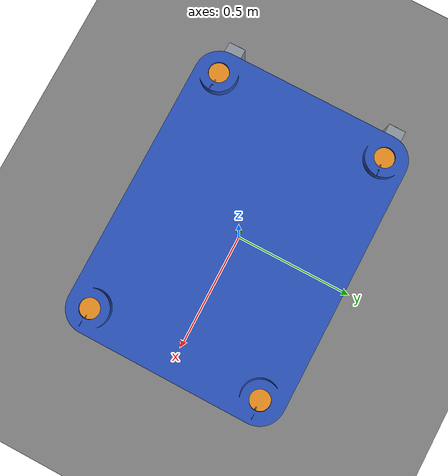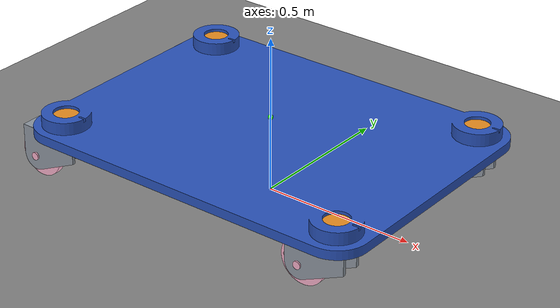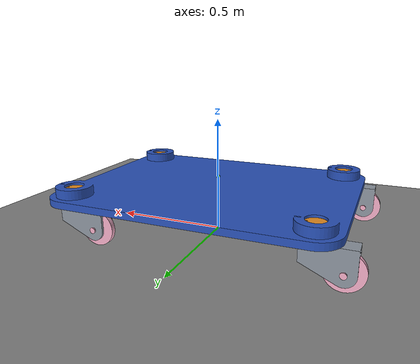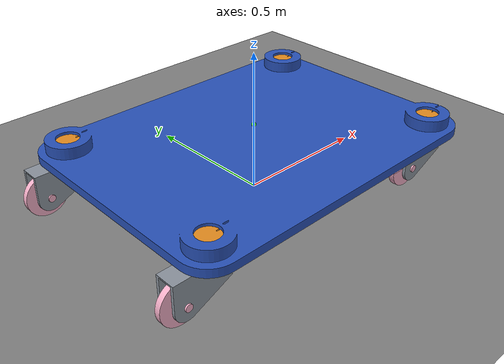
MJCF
<?xml version="1.0" encoding="UTF-8"?>
<mujoco model="offset_steering_wheel">

  <compiler angle="radian"
            autolimits="true"
            inertiafromgeom="true"
            meshdir="../STL"/>

  <option timestep="0.002"
          gravity="0 0 -9.81"
          integrator="implicitfast"
          cone="elliptic"/>

  <statistic center="0 0 0.15" extent="1.5"/>

  <visual>
    <headlight ambient="0.35 0.35 0.35" diffuse="0.7 0.7 0.7" specular="0.2 0.2 0.2"/>
    <rgba haze="0.15 0.25 0.35 1"/>
    <global azimuth="135" elevation="-25"/>
  </visual>

  <default>
    <joint damping="0.05" armature="0.002"/>

    <default class="visual_mesh">
      <geom type="mesh" contype="0" conaffinity="0" group="2" density="0"/>
    </default>

    <default class="collision">
      <geom group="3"
            rgba="0 0 0 0"
            condim="3"
            friction="0.8 0.02 0.001"
            solref="0.01 1"
            solimp="0.9 0.95 0.001"/>
    </default>

    <default class="wheel_collision">
      <geom group="3"
            rgba="0 0 0 0"
            condim="4"
            friction="1.0 0.02 0.001"
            solref="0.005 1"
            solimp="0.95 0.99 0.001"/>
    </default>
  </default>

  <asset>
    <mesh name="base_mesh" file="base/offestWheel - 底盘-1.STL"/>

    <mesh name="caster_bracket_1_mesh" file="caster_1/offestWheel - 脚轮架-1.STL"/>
    <mesh name="steering_turntable_1_mesh" file="caster_1/offestWheel - 转向轮-1.STL"/>
    <mesh name="drive_wheel_1_mesh" file="wheel_1/offestWheel - 脚轮-1.STL"/>

    <mesh name="caster_bracket_2_mesh" file="caster_2/offestWheel - 脚轮架-2.STL"/>
    <mesh name="steering_turntable_2_mesh" file="caster_2/offestWheel - 转向轮-2.STL"/>
    <mesh name="drive_wheel_2_mesh" file="wheel_2/offestWheel - 脚轮-2.STL"/>

    <mesh name="caster_bracket_3_mesh" file="caster_3/offestWheel - 脚轮架-3.STL"/>
    <mesh name="steering_turntable_3_mesh" file="caster_3/offestWheel - 转向轮-3.STL"/>
    <mesh name="drive_wheel_3_mesh" file="wheel_3/offestWheel - 脚轮-3.STL"/>

    <mesh name="caster_bracket_4_mesh" file="caster_4/offestWheel - 脚轮架-4.STL"/>
    <mesh name="steering_turntable_4_mesh" file="caster_4/offestWheel - 转向轮-4.STL"/>
    <mesh name="drive_wheel_4_mesh" file="wheel_4/offestWheel - 脚轮-4.STL"/>

    <!-- With texuniform=true and texrepeat=1, every checker cell is 1 m x 1 m. -->
    <texture name="floor_checker_texture"
             type="2d"
             builtin="checker"
             width="512"
             height="512"
             rgb1="1 1 1"
             rgb2="0 0 0"/>

    <material name="base_material" rgba="0.16 0.32 0.72 1"/>
    <material name="caster_material" rgba="0.55 0.58 0.62 1"/>
    <material name="turntable_material" rgba="0.90 0.55 0.12 1"/>
    <!-- Light pink keeps the wheel grooves visible while the wheel rotates. -->
    <material name="wheel_material"
              rgba="0.95 0.68 0.78 1"
              specular="0.15"
              shininess="0.25"/>
    <material name="floor_material"
              texture="floor_checker_texture"
              texrepeat="1 1"
              texuniform="true"
              reflectance="0.1"
              rgba="1 1 1 1"/>
  </asset>

  <worldbody>
    <light name="key_light" pos="0 -1.5 2.5" dir="0 0.45 -1" directional="true"/>
    <geom name="floor"
          type="plane"
          size="0 0 0.1"
          material="floor_material"
          condim="3"
          friction="1.0 0.02 0.001"/>

    <!-- The free body is raised by the wheel radius plus the STL wheel-centre height. -->
    <body name="base" pos="0 0 0.175">
      <freejoint name="base_freejoint"/>

      <geom name="base_visual"
            class="visual_mesh"
            mesh="base_mesh"
            material="base_material"/>
      <geom name="base_collision"
            class="collision"
            type="box"
            pos="0 0 0.035"
            size="0.6 0.45 0.035"
            mass="20"/>

      <site name="imu_site" pos="0 0 0.07" size="0.008" rgba="0.1 1 0.1 1"/>
      <camera name="tracking_camera" mode="trackcom" pos="1.7 -1.7 1.2" xyaxes="0.707 0.707 0 -0.333 0.333 0.882"/>

      <!-- Caster 1: front-left, steering pivot (0.5, 0.35). -->
      <body name="caster_1">
        <joint name="steering_joint_1" type="hinge" pos="0.5 0.35 0.035" axis="0 0 1"/>
        <geom name="caster_bracket_1_visual" class="visual_mesh" mesh="caster_bracket_1_mesh" material="caster_material"/>
        <geom name="steering_turntable_1_visual" class="visual_mesh" mesh="steering_turntable_1_mesh" material="turntable_material"/>
        <geom name="caster_bracket_1_collision" class="collision" type="box" pos="0.45 0.35 -0.0525" size="0.1 0.035 0.0925" mass="2"/>
        <geom name="steering_turntable_1_collision" class="collision" type="cylinder" pos="0.5 0.35 0.035" size="0.04 0.025" mass="0.5"/>

        <body name="wheel_1">
          <joint name="wheel_joint_1" type="hinge" pos="0.395 0.35 -0.1" axis="0 1 0"/>
          <geom name="wheel_1_visual" class="visual_mesh" mesh="drive_wheel_1_mesh" material="wheel_material"/>
          <geom name="wheel_1_collision" class="wheel_collision" type="cylinder" pos="0.395 0.35 -0.1" euler="1.57079632679 0 0" size="0.075 0.04" mass="1.5"/>
        </body>
      </body>

      <!-- Caster 2: front-right, steering pivot (0.5, -0.35). -->
      <body name="caster_2">
        <joint name="steering_joint_2" type="hinge" pos="0.5 -0.35 0.035" axis="0 0 1"/>
        <geom name="caster_bracket_2_visual" class="visual_mesh" mesh="caster_bracket_2_mesh" material="caster_material"/>
        <geom name="steering_turntable_2_visual" class="visual_mesh" mesh="steering_turntable_2_mesh" material="turntable_material"/>
        <geom name="caster_bracket_2_collision" class="collision" type="box" pos="0.45 -0.35 -0.0525" size="0.1 0.035 0.0925" mass="2"/>
        <geom name="steering_turntable_2_collision" class="collision" type="cylinder" pos="0.5 -0.35 0.035" size="0.04 0.025" mass="0.5"/>

        <body name="wheel_2">
          <joint name="wheel_joint_2" type="hinge" pos="0.395 -0.35 -0.1" axis="0 1 0"/>
          <geom name="wheel_2_visual" class="visual_mesh" mesh="drive_wheel_2_mesh" material="wheel_material"/>
          <geom name="wheel_2_collision" class="wheel_collision" type="cylinder" pos="0.395 -0.35 -0.1" euler="1.57079632679 0 0" size="0.075 0.04" mass="1.5"/>
        </body>
      </body>

      <!-- Caster 3: rear-right, steering pivot (-0.5, -0.35). -->
      <body name="caster_3">
        <joint name="steering_joint_3" type="hinge" pos="-0.5 -0.35 0.035" axis="0 0 1"/>
        <geom name="caster_bracket_3_visual" class="visual_mesh" mesh="caster_bracket_3_mesh" material="caster_material"/>
        <geom name="steering_turntable_3_visual" class="visual_mesh" mesh="steering_turntable_3_mesh" material="turntable_material"/>
        <geom name="caster_bracket_3_collision" class="collision" type="box" pos="-0.55 -0.35 -0.0525" size="0.1 0.035 0.0925" mass="2"/>
        <geom name="steering_turntable_3_collision" class="collision" type="cylinder" pos="-0.5 -0.35 0.035" size="0.04 0.025" mass="0.5"/>

        <body name="wheel_3">
          <joint name="wheel_joint_3" type="hinge" pos="-0.605 -0.35 -0.1" axis="0 1 0"/>
          <geom name="wheel_3_visual" class="visual_mesh" mesh="drive_wheel_3_mesh" material="wheel_material"/>
          <geom name="wheel_3_collision" class="wheel_collision" type="cylinder" pos="-0.605 -0.35 -0.1" euler="1.57079632679 0 0" size="0.075 0.04" mass="1.5"/>
        </body>
      </body>

      <!-- Caster 4: rear-left, steering pivot (-0.5, 0.35). -->
      <body name="caster_4">
        <joint name="steering_joint_4" type="hinge" pos="-0.5 0.35 0.035" axis="0 0 1"/>
        <geom name="caster_bracket_4_visual" class="visual_mesh" mesh="caster_bracket_4_mesh" material="caster_material"/>
        <geom name="steering_turntable_4_visual" class="visual_mesh" mesh="steering_turntable_4_mesh" material="turntable_material"/>
        <geom name="caster_bracket_4_collision" class="collision" type="box" pos="-0.55 0.35 -0.0525" size="0.1 0.035 0.0925" mass="2"/>
        <geom name="steering_turntable_4_collision" class="collision" type="cylinder" pos="-0.5 0.35 0.035" size="0.04 0.025" mass="0.5"/>

        <body name="wheel_4">
          <joint name="wheel_joint_4" type="hinge" pos="-0.605 0.35 -0.1" axis="0 1 0"/>
          <geom name="wheel_4_visual" class="visual_mesh" mesh="drive_wheel_4_mesh" material="wheel_material"/>
          <geom name="wheel_4_collision" class="wheel_collision" type="cylinder" pos="-0.605 0.35 -0.1" euler="1.57079632679 0 0" size="0.075 0.04" mass="1.5"/>
        </body>
      </body>
    </body>
  </worldbody>

  <actuator>
    <!-- Velocity controls are ordered steering 1..4, then wheel 1..4. -->
    <velocity name="steering_velocity_1" joint="steering_joint_1" kv="30" ctrlrange="-6.283 6.283" forcerange="-80 80"/>
    <velocity name="steering_velocity_2" joint="steering_joint_2" kv="30" ctrlrange="-6.283 6.283" forcerange="-80 80"/>
    <velocity name="steering_velocity_3" joint="steering_joint_3" kv="30" ctrlrange="-6.283 6.283" forcerange="-80 80"/>
    <velocity name="steering_velocity_4" joint="steering_joint_4" kv="30" ctrlrange="-6.283 6.283" forcerange="-80 80"/>

    <velocity name="wheel_velocity_1" joint="wheel_joint_1" kv="15" ctrlrange="-40 40" forcerange="-120 120"/>
    <velocity name="wheel_velocity_2" joint="wheel_joint_2" kv="15" ctrlrange="-40 40" forcerange="-120 120"/>
    <velocity name="wheel_velocity_3" joint="wheel_joint_3" kv="15" ctrlrange="-40 40" forcerange="-120 120"/>
    <velocity name="wheel_velocity_4" joint="wheel_joint_4" kv="15" ctrlrange="-40 40" forcerange="-120 120"/>
  </actuator>

  <sensor>
    <framepos name="base_position" objtype="body" objname="base"/>
    <framequat name="base_orientation" objtype="body" objname="base"/>
    <framequat name="imu_orientation" objtype="site" objname="imu_site"/>
    <gyro name="base_angular_velocity" site="imu_site"/>
    <accelerometer name="base_linear_acceleration" site="imu_site"/>

    <jointpos name="steering_angle_1" joint="steering_joint_1"/>
    <jointpos name="steering_angle_2" joint="steering_joint_2"/>
    <jointpos name="steering_angle_3" joint="steering_joint_3"/>
    <jointpos name="steering_angle_4" joint="steering_joint_4"/>
    <jointvel name="steering_rate_1" joint="steering_joint_1"/>
    <jointvel name="steering_rate_2" joint="steering_joint_2"/>
    <jointvel name="steering_rate_3" joint="steering_joint_3"/>
    <jointvel name="steering_rate_4" joint="steering_joint_4"/>

    <jointvel name="wheel_rate_1" joint="wheel_joint_1"/>
    <jointvel name="wheel_rate_2" joint="wheel_joint_2"/>
    <jointvel name="wheel_rate_3" joint="wheel_joint_3"/>
    <jointvel name="wheel_rate_4" joint="wheel_joint_4"/>
  </sensor>
</mujoco>
